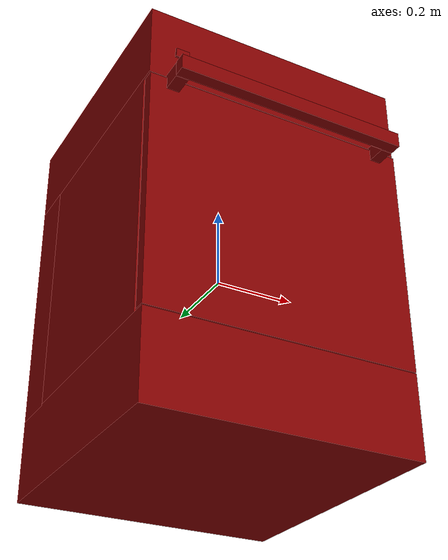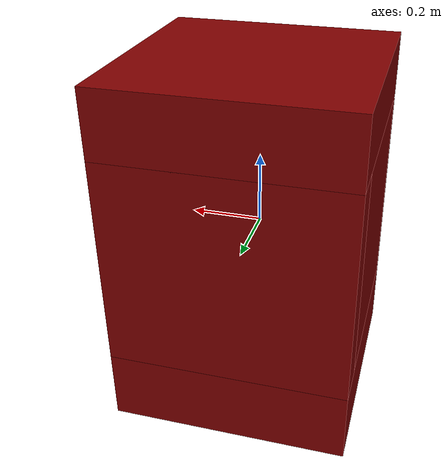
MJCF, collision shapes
<?xml version='1.0' encoding='UTF-8'?>
<mujoco model="model">
  <option timestep="0.002" gravity="0.0 0.0 -9.81"/>
  <compiler angle="radian"/>
  <asset>
    <mesh file="visuals/button_power.obj" name="button_power_vis"/>
    <mesh file="visuals/Body001.obj" name="Body001_vis"/>
    <mesh file="visuals/door.obj" name="door_vis"/>
    <mesh file="visuals/rack0.obj" name="rack0_vis"/>
    <mesh file="visuals/rack1.obj" name="rack1_vis"/>
    <texture file="visuals/T_BC001.png" name="Body001_material" type="2d"/>
    <material name="Body001_material" rgba="1 1 1 1.0" texture="Body001_material" shininess="0.141421377658844" specular="2"/>
    <texture file="visuals/T_BC001.png" name="button_power_material" type="2d"/>
    <material name="button_power_material" rgba="1 1 1 1.0" texture="button_power_material" shininess="0.141421377658844" specular="2"/>
    <texture file="visuals/T_BC001.png" name="door_material" type="2d"/>
    <material name="door_material" rgba="1 1 1 1.0" texture="door_material" shininess="0.141421377658844" specular="2"/>
    <texture file="visuals/T_BC001.png" name="rack0_material" type="2d"/>
    <material name="rack0_material" rgba="1 1 1 1.0" texture="rack0_material" shininess="0.141421377658844" specular="2"/>
    <texture file="visuals/T_BC001.png" name="rack1_material" type="2d"/>
    <material name="rack1_material" rgba="1 1 1 1.0" texture="rack1_material" shininess="0.141421377658844" specular="2"/>
  </asset>
  <default>
    <default class="visual">
      <geom conaffinity="0" contype="0" group="1" type="mesh"/>
    </default>
    <default class="collision">
      <geom group="0" rgba="0.5 0 0 0.5"/>
    </default>
    <default class="spawn">
      <geom group="0" rgba="1 1 1 0.5" contype="0" conaffinity="0"/>
      <site group="0" rgba="1 1 1 0.5"/>
    </default>
    <default class="region">
      <geom group="1" conaffinity="0" contype="0" rgba="0 1 0 0"/>
    </default>
  </default>
  <worldbody>
    <body>
      <body name="object">
        <geom mesh="Body001_vis" type="mesh" solimp="0.998 0.998 0.001" solref="0.001 1" friction="0.95 0.3 0.1" class="visual" material="Body001_material"/>
        <geom class="collision" type="box" pos="-0.31870374 0.03623243 0.00660265" size="0.01068453211337328 0.29174354672431946 0.29694995284080505" quat="1.0 0.0 0.0 0.0"/>
        <geom class="collision" type="box" pos="0.31925637 -0.00324653 0.00837685" size="0.010131948627531528 0.2581738829612732 0.2944124937057495" quat="1.0 0.0 0.0 0.0"/>
        <geom class="collision" type="box" pos="0.00000001 0.04001891 0.39582330" size="0.3293881118297577 0.3270302712917328 0.09313099831342697" quat="1.0 0.0 0.0 0.0"/>
        <geom class="collision" type="box" pos="-0.00000001 0.03751531 -0.38746178" size="0.3293883204460144 0.3295339047908783 0.10149198025465012" quat="1.0 0.0 0.0 0.0"/>
        <geom class="collision" type="box" pos="-0.00000006 0.30962720 0.00752324" size="0.3293883502483368 0.057421986013650894 0.2979374825954437" quat="1.0 0.0 0.0 0.0"/>
        <geom class="collision" type="box" pos="0.30428690 0.00282598 -0.09622507" size="0.012510878965258598 0.20189034938812256 0.00228360528126359" quat="1.0 0.0 0.0 0.0"/>
        <geom class="collision" type="box" pos="0.30428690 0.00282598 0.17162235" size="0.012510878965258598 0.20189034938812256 0.00228360528126359" quat="1.0 0.0 0.0 0.0"/>
        <geom class="collision" type="box" pos="-0.29880443 0.00282598 -0.09622507" size="0.012510878965258598 0.20189034938812256 0.00228360528126359" quat="1.0 0.0 0.0 0.0"/>
        <geom class="collision" type="box" pos="-0.29880443 0.00282598 0.17162235" size="0.012510878965258598 0.20189034938812256 0.00228360528126359" quat="1.0 0.0 0.0 0.0"/>
        <body name="button_power">
          <joint axis="0.0 1.0 0.0" pos="-0.25283110 -0.29305256 0.37646499" limited="true" name="button_power_joint" range="0.0 0.005" type="slide" damping="1" frictionloss="1" armature=".01" stiffness="4" springref="-1"/>
          <geom mesh="button_power_vis" type="mesh" solimp="0.998 0.998 0.001" solref="0.001 1" friction="0.95 0.3 0.1" class="visual" material="button_power_material"/>
          <geom class="collision" type="box" pos="-0.25286633 -0.29398823 0.37655270" size="0.01696334406733513 0.0026795221492648125 0.01153666153550148" quat="1.0 0.0 0.0 0.0"/>
        </body>
        <body name="door">
          <joint axis="1.0 1.3234889800848443e-23 -6.617444900424222e-24" pos="-2e-08 -0.29201846428348543 -0.2829750099308777" limited="true" name="door_joint" range="0.0 0.8235987755982988" type="hinge" damping="1" frictionloss="10" armature="1" stiffness="2"/>
          <geom mesh="door_vis" type="mesh" solimp="0.998 0.998 0.001" solref="0.001 1" friction="0.95 0.3 0.1" class="visual" material="door_material"/>
          <geom class="collision" type="box" pos="-0.00000002 -0.27800802 0.00608147" size="0.32938823103904724 0.014010444283485413 0.2890564799308777" quat="1.0 0.0 0.0 0.0" name="door_main"/>
          <geom class="collision" type="box" pos="-0.00129120 -0.35357145 0.28473186" size="0.28864985704421997 0.014407920651137829 0.018942633643746376" quat="1.0 0.0 0.0 0.0" name="door_handle_main"/>
          <geom class="collision" type="box" pos="0.27224612 -0.31252459 0.28473186" size="0.025254618376493454 0.013897830620408058 0.01894262433052063" quat="0.7071067094802856 0.0 0.0 0.7071068286895752"/>
          <geom class="collision" type="box" pos="-0.27395731 -0.31252459 0.28473186" size="0.025254618376493454 0.015166748315095901 0.01894262805581093" quat="0.7071067094802856 0.0 0.0 0.7071068286895752"/>
        </body>
        <body name="rack0">
          <geom class="region" name="reg_rack0" type="box" pos="-0.0009123699999999957 0.00018641499999999533 -0.039137985" size="0.2630205 0.205407995 0.101146255"/>
          <joint axis="0.0 -1.0 0.0" pos="0.00013572 -0.00016341 -0.13796558" limited="true" name="rack0_joint" range="0.0 0.35" type="slide" damping="1" frictionloss="1" armature=".01" stiffness="0.05"/>
          <geom mesh="rack0_vis" type="mesh" solimp="0.998 0.998 0.001" solref="0.001 1" friction="0.95 0.3 0.1" class="visual" material="rack0_material"/>
          <geom class="collision" type="box" pos="0.27035937 -0.00224619 -0.13361231" size="0.22334714233875275 0.002674975199624896 0.05057617649435997" quat="0.7071068286895752 -4.406464881867578e-08 7.090035580858967e-08 -0.7071067094802856"/>
          <geom class="collision" type="box" pos="-0.27138492 -0.00224619 -0.13361231" size="0.22334714233875275 0.0028053002897650003 0.05057617649435997" quat="0.7071068286895752 -4.406464881867578e-08 7.090035580858967e-08 -0.7071067094802856"/>
          <geom class="collision" type="box" pos="-0.22943766 -0.00224619 -0.15446097" size="0.21458998322486877 0.002737002680078149 0.03179175406694412" quat="7.061601081659319e-08 0.7071068286895752 -0.7071067690849304 -2.0474153927807492e-07"/>
          <geom class="collision" type="box" pos="0.00169437 -0.21479677 -0.13361231" size="0.27327457070350647 0.004980974830687046 0.05057617649435997" quat="1.0 -8.146032826061855e-08 0.0 0.0"/>
          <geom class="collision" type="box" pos="-0.13903259 -0.00224619 -0.15497196" size="0.21458998322486877 0.002737002680078149 0.03427965193986893" quat="7.06160250274479e-08 0.7071068286895752 -0.7071067690849304 -2.047415250672202e-07"/>
          <geom class="collision" type="box" pos="-0.04862753 -0.00224619 -0.15752694" size="0.21458998322486877 0.002737002680078149 0.03427965193986893" quat="7.06160250274479e-08 0.7071068286895752 -0.7071067690849304 -2.047415250672202e-07"/>
          <geom class="collision" type="box" pos="0.05947249 -0.00224619 -0.15573846" size="0.21458998322486877 0.002737002680078149 0.03158159554004669" quat="7.06160250274479e-08 0.7071068286895752 -0.7071067690849304 -2.047415250672202e-07"/>
          <geom class="collision" type="box" pos="0.22509716 -0.00224619 -0.14746031" size="0.21458998322486877 0.002737002680078149 0.025414342060685158" quat="7.06160250274479e-08 0.7071068286895752 -0.7071067690849304 -2.047415250672202e-07"/>
          <geom class="collision" type="box" pos="0.28622514 -0.00224620 -0.08486326" size="0.22116327285766602 0.0035710958763957024 0.012887637130916119" quat="0.5000000596046448 -0.5 0.5 -0.4999999403953552"/>
          <geom class="collision" type="box" pos="-0.28095403 -0.00224620 -0.08486326" size="0.22116327285766602 0.0035710958763957024 0.012887637130916119" quat="0.5000000596046448 -0.5 0.5 -0.4999999403953552"/>
          <geom class="collision" type="box" pos="-0.25283471 -0.00224617 -0.18441770" size="0.2233489751815796 0.004171113017946482 0.020253051072359085" quat="0.4960270822048187 -0.5021468997001648 0.5056757926940918 -0.49608224630355835"/>
          <geom class="collision" type="box" pos="0.00169437 0.21581901 -0.13361231" size="0.27327457070350647 0.004980974830687046 0.05057617649435997" quat="1.0 -8.146032826061855e-08 0.0 0.0"/>
          <geom class="collision" type="box" pos="-0.15769352 -0.00224615 -0.17838706" size="0.21458998322486877 0.002737002680078149 0.011894537135958672" quat="0.10663479566574097 -0.6990200877189636 0.6990200281143188 -0.10663466155529022"/>
          <geom class="collision" type="box" pos="-0.06491096 -0.00224614 -0.18502015" size="0.21458998322486877 0.002737002680078149 0.015286398120224476" quat="0.06162836775183678 -0.704416036605835 0.704416036605835 -0.06162821501493454"/>
          <geom class="collision" type="box" pos="0.04077546 -0.00224613 -0.17528051" size="0.21458998322486877 0.002737002680078149 0.02019345574080944" quat="0.06162836775183678 -0.704416036605835 0.704416036605835 -0.06162821501493454"/>
          <geom class="collision" type="box" pos="-0.25391391 -0.00224622 -0.18429542" size="0.21458998322486877 0.002737002680078149 0.01933000609278679" quat="0.5012120604515076 -0.4987850785255432 0.49878495931625366 -0.5012120008468628"/>
          <geom class="collision" type="box" pos="0.25278932 -0.00224612 -0.17749869" size="0.21458998322486877 0.002737002680078149 0.01933000609278679" quat="0.5012120604515076 -0.4987850785255432 0.49878495931625366 -0.5012120008468628"/>
          <geom class="collision" type="box" pos="-0.20066254 -0.00224620 -0.17719308" size="0.21458998322486877 0.002737002680078149 0.043117646127939224" quat="0.544306218624115 -0.45136553049087524 0.4513653814792633 -0.5443061590194702"/>
          <geom class="collision" type="box" pos="-0.11098495 -0.00224618 -0.18012677" size="0.21458998322486877 0.002737002680078149 0.04727865010499954" quat="0.544306218624115 -0.45136553049087524 0.4513653814792633 -0.5443061590194702"/>
          <geom class="collision" type="box" pos="-0.01311903 -0.00224616 -0.17865822" size="0.21458998322486877 0.002737002680078149 0.054874345660209656" quat="0.5840214490890503 -0.3986464738845825 0.3986463248729706 -0.5840213894844055"/>
          <geom class="collision" type="box" pos="0.10165671 -0.00224614 -0.17234737" size="0.21458998322486877 0.002737002680078149 0.06477890908718109" quat="0.5826183557510376 -0.400694340467453 0.40069419145584106 -0.5826182961463928"/>
          <geom class="collision" type="box" pos="0.19804606 -0.00224614 -0.16353090" size="0.21458998322486877 0.002737002680078149 0.04006359726190567" quat="0.39856216311454773 -0.5840790271759033 0.5840789079666138 -0.39856210350990295"/>
        </body>
        <body name="rack1">
          <geom class="region" name="reg_rack1" type="box" pos="-0.0009488450000000037 -2.460999999999436e-05 0.21016203" size="0.263020495 0.20540798999999998 0.08842664"/>
          <joint axis="0.0 -1.0 0.0" pos="0.00013572 -0.00016336 0.12793933" limited="true" name="rack1_joint" range="0.0 0.35" type="slide" damping="1" frictionloss="1" armature=".01" stiffness="0.05"/>
          <geom mesh="rack1_vis" type="mesh" solimp="0.998 0.998 0.001" solref="0.001 1" friction="0.95 0.3 0.1" class="visual" material="rack1_material"/>
          <geom class="collision" type="box" pos="0.00169437 0.21581907 0.13229260" size="0.27327457070350647 0.004980974830687046 0.05057617649435997" quat="1.0 -8.146032826061855e-08 0.0 0.0"/>
          <geom class="collision" type="box" pos="0.00169437 -0.21479671 0.13229260" size="0.27327457070350647 0.004980974830687046 0.05057617649435997" quat="1.0 -8.146032826061855e-08 0.0 0.0"/>
          <geom class="collision" type="box" pos="-0.27138492 -0.00224614 0.13229260" size="0.22334714233875275 0.0028053002897650003 0.05057617649435997" quat="0.7071068286895752 -4.406464881867578e-08 7.090035580858967e-08 -0.7071067094802856"/>
          <geom class="collision" type="box" pos="0.27035937 -0.00224614 0.13229260" size="0.22334714233875275 0.002674975199624896 0.05057617649435997" quat="0.7071068286895752 -4.406464881867578e-08 7.090035580858967e-08 -0.7071067094802856"/>
          <geom class="collision" type="box" pos="-0.25283471 -0.00224613 0.08223583" size="0.22334924340248108 0.004093677271157503 0.02025183103978634" quat="0.4960270822048187 -0.5021468997001648 0.5056757926940918 -0.49608224630355835"/>
          <geom class="collision" type="box" pos="-0.28095403 -0.00224614 0.18104166" size="0.22116327285766602 0.0035710958763957024 0.012887637130916119" quat="0.5000000596046448 -0.5 0.5 -0.4999999403953552"/>
          <geom class="collision" type="box" pos="0.28622514 -0.00224614 0.18104166" size="0.22116327285766602 0.0035710958763957024 0.012887637130916119" quat="0.5000000596046448 -0.5 0.5 -0.4999999403953552"/>
          <geom class="collision" type="box" pos="0.22509716 -0.00224614 0.11844460" size="0.21458998322486877 0.002737002680078149 0.025414342060685158" quat="7.06160250274479e-08 0.7071068286895752 -0.7071067690849304 -2.047415250672202e-07"/>
          <geom class="collision" type="box" pos="0.05947249 -0.00224614 0.11016645" size="0.21458998322486877 0.002737002680078149 0.03158159554004669" quat="7.06160250274479e-08 0.7071068286895752 -0.7071067690849304 -2.047415250672202e-07"/>
          <geom class="collision" type="box" pos="-0.04862753 -0.00224614 0.10837796" size="0.21458998322486877 0.002737002680078149 0.03427965193986893" quat="7.06160250274479e-08 0.7071068286895752 -0.7071067690849304 -2.047415250672202e-07"/>
          <geom class="collision" type="box" pos="-0.13903259 -0.00224614 0.11093294" size="0.21458998322486877 0.002737002680078149 0.03427965193986893" quat="7.06160250274479e-08 0.7071068286895752 -0.7071067690849304 -2.047415250672202e-07"/>
          <geom class="collision" type="box" pos="-0.22943766 -0.00224614 0.11144394" size="0.21458998322486877 0.002737002680078149 0.03179175406694412" quat="7.061601081659319e-08 0.7071068286895752 -0.7071067690849304 -2.0474153927807492e-07"/>
          <geom class="collision" type="box" pos="0.19804606 -0.00224614 0.10333477" size="0.21458998322486877 0.002737002680078149 0.04006359726190567" quat="0.39856216311454773 -0.5840790271759033 0.5840789079666138 -0.39856210350990295"/>
          <geom class="collision" type="box" pos="0.10165671 -0.00224614 0.09451829" size="0.21458998322486877 0.002737002680078149 0.06477890908718109" quat="0.5826183557510376 -0.400694340467453 0.40069419145584106 -0.5826182961463928"/>
          <geom class="collision" type="box" pos="-0.01311903 -0.00224616 0.08820745" size="0.21458998322486877 0.002737002680078149 0.054874345660209656" quat="0.5840214490890503 -0.3986464738845825 0.3986463248729706 -0.5840213894844055"/>
          <geom class="collision" type="box" pos="0.04077546 -0.00224613 0.09158515" size="0.21458998322486877 0.002737002680078149 0.02019345574080944" quat="0.06162836775183678 -0.704416036605835 0.704416036605835 -0.06162821501493454"/>
          <geom class="collision" type="box" pos="-0.06491096 -0.00224614 0.08184552" size="0.21458998322486877 0.002737002680078149 0.015286398120224476" quat="0.06162836775183678 -0.704416036605835 0.704416036605835 -0.06162821501493454"/>
          <geom class="collision" type="box" pos="-0.11098495 -0.00224618 0.08673888" size="0.21458998322486877 0.002737002680078149 0.04727865010499954" quat="0.544306218624115 -0.45136553049087524 0.4513653814792633 -0.5443061590194702"/>
          <geom class="collision" type="box" pos="-0.15769352 -0.00224615 0.08847861" size="0.21458998322486877 0.002737002680078149 0.011894537135958672" quat="0.10663479566574097 -0.6990200877189636 0.6990200281143188 -0.10663466155529022"/>
          <geom class="collision" type="box" pos="-0.20066254 -0.00224620 0.08967259" size="0.21458998322486877 0.002737002680078149 0.043117646127939224" quat="0.544306218624115 -0.45136553049087524 0.4513653814792633 -0.5443061590194702"/>
          <geom class="collision" type="box" pos="0.25278932 -0.00224612 0.08936698" size="0.21458998322486877 0.002737002680078149 0.01933000609278679" quat="0.5012120604515076 -0.4987850785255432 0.49878495931625366 -0.5012120008468628"/>
          <geom class="collision" type="box" pos="-0.25391391 -0.00224622 0.08257024" size="0.21458998322486877 0.002737002680078149 0.01933000609278679" quat="0.5012120604515076 -0.4987850785255432 0.49878495931625366 -0.5012120008468628"/>
        </body>
        <geom class="region" name="reg_int" type="box" pos="0.00011379999999999724 -0.0044694450000000024 0.009012235000000007" size="0.30461353 0.253965795 0.28934737499999996"/>
        <geom class="region" name="reg_main" type="box" pos="4.999999997368221e-09 0.03839068000000001 2.7999999999139824e-07" size="0.330388205 0.32965855 0.48995407"/>
      </body>
    </body>
  </worldbody>
  <actuator>
    <motor name="button_power_joint_actuator" joint="button_power_joint" gear="0.5"/>
    <motor name="door_joint_actuator" joint="door_joint" gear="50"/>
    <motor name="rack0_joint_actuator" joint="rack0_joint" gear="50"/>
    <motor name="rack1_joint_actuator" joint="rack1_joint" gear="50"/>
  </actuator>
</mujoco>
